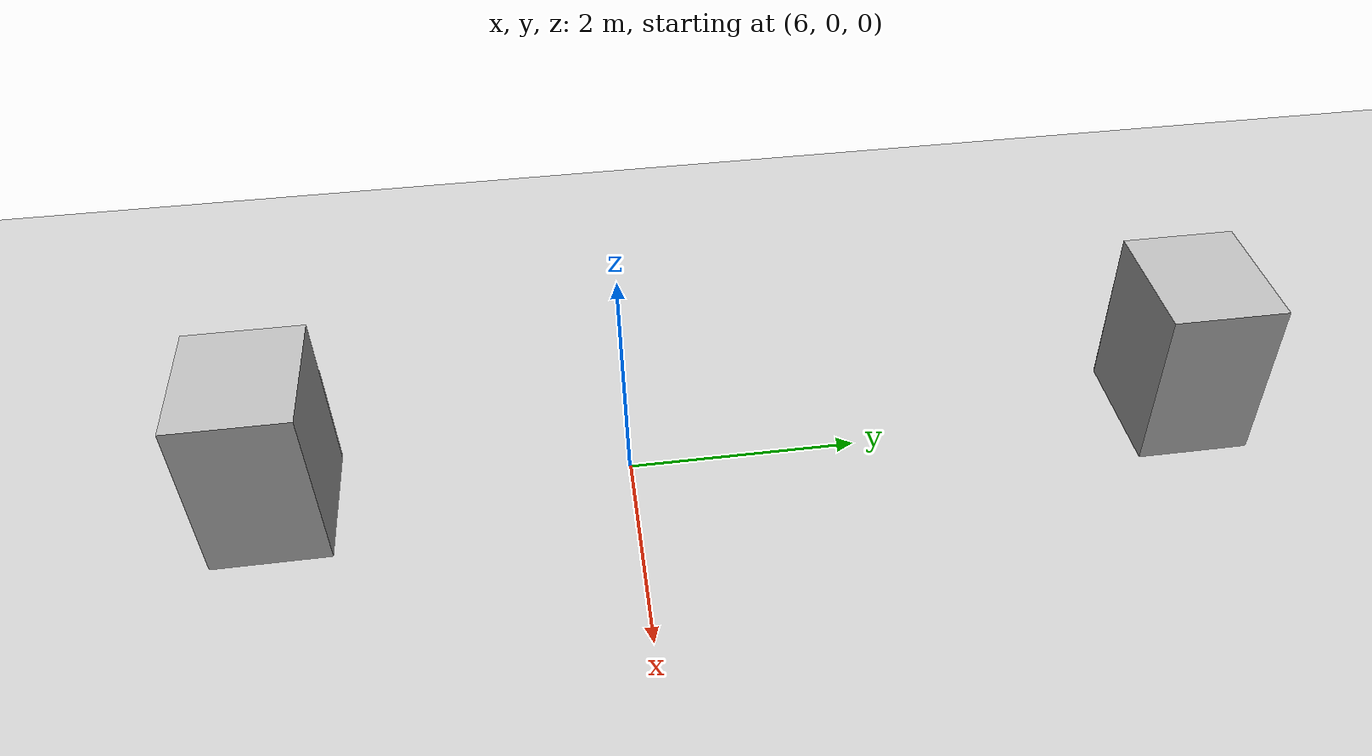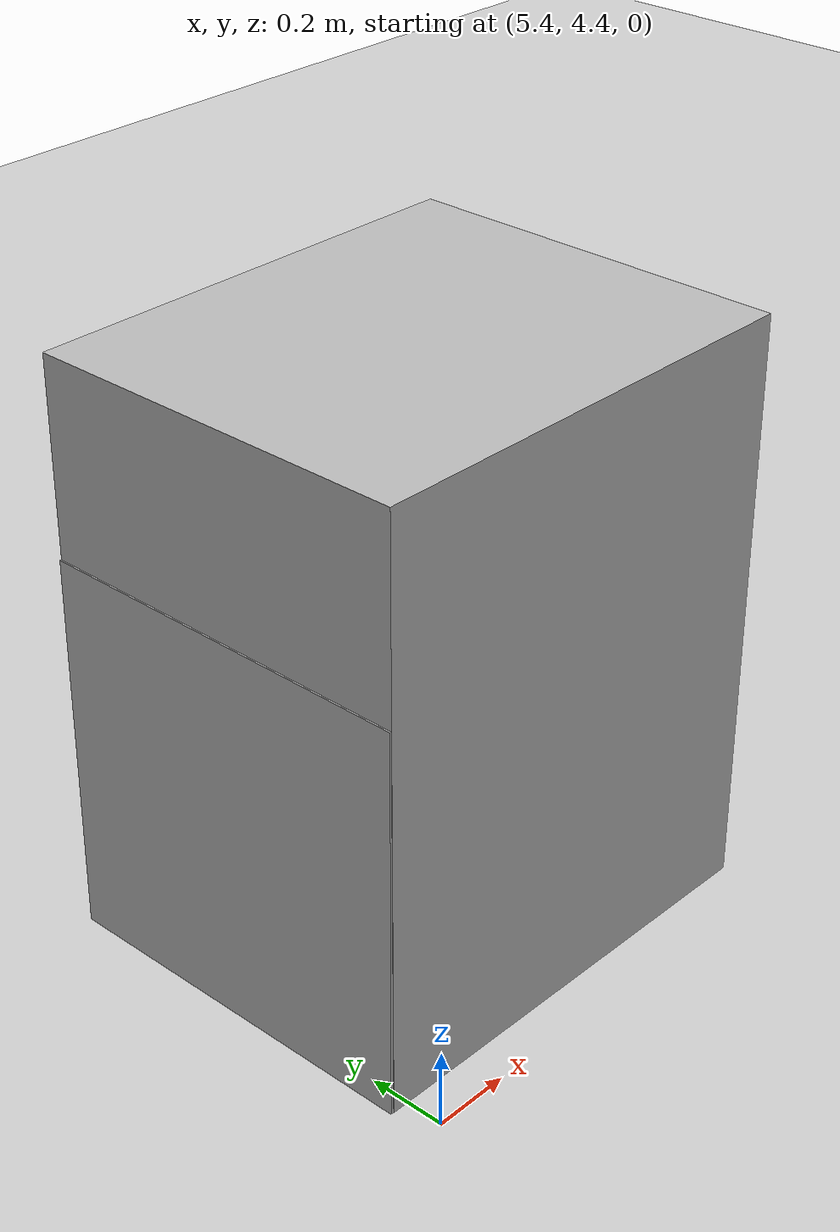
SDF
<sdf version="1.7">
 <world name="default">
  <plugin name="ros_interface_plugin" filename="librotors_gazebo_ros_interface_plugin.so"/>
  <light name="sun" type="directional">
   <pose>0 0 10 0 -0 0</pose>
   <diffuse>0.8 0.8 0.8 1</diffuse>
   <specular>0.2 0.2 0.2 1</specular>
   <attenuation>
    <range>1000</range>
    <constant>0.9</constant>
    <linear>0.01</linear>
    <quadratic>0.001</quadratic>
   </attenuation>
   <direction>-0.5 0.1 -0.9</direction>
   <spot><inner_angle>0</inner_angle><outer_angle>0</outer_angle><falloff>0</falloff></spot>
  </light>
  <model name="ground_plane">
   <static>1</static>
   <link name="link">
    <collision name="collision">
     <geometry><plane><normal>0 0 1</normal><size>100 100</size></plane></geometry>
     <surface><friction><ode><mu>100</mu><mu2>50</mu2></ode></friction></surface>
    </collision>
    <visual name="visual">
     <cast_shadows>0</cast_shadows>
     <geometry><plane><normal>0 0 1</normal><size>100 100</size></plane></geometry>
     <material>
      <script><uri>file://media/materials/scripts/gazebo.material</uri><name>Gazebo/Grey</name></script>
     </material>
    </visual>
   </link>
  </model>
  <gravity>0 0 -9.8</gravity>
  <magnetic_field>6e-06 2.3e-05 -4.2e-05</magnetic_field>
  <atmosphere type="adiabatic"/>
  <physics type="ode">
   <max_step_size>0.001</max_step_size>
   <real_time_factor>1</real_time_factor>
   <real_time_update_rate>1000</real_time_update_rate>
  </physics>
  <scene><ambient>0.4 0.4 0.4 1</ambient><background>0.7 0.7 0.7 1</background><shadows>1</shadows></scene>
  <spherical_coordinates>
   <surface_model>EARTH_WGS84</surface_model>
   <latitude_deg>0</latitude_deg>
   <longitude_deg>0</longitude_deg>
   <elevation>0</elevation>
   <heading_deg>0</heading_deg>
  </spherical_coordinates>
  <model name="Big box">
   <pose>6.0978 -3.03605 0.749499 -0 -0.000832 1e-06</pose>
   <static>0</static>
   <link name="link">
    <inertial>
     <mass>40</mass>
     <inertia><ixx>1</ixx><ixy>0</ixy><ixz>0</ixz><iyy>1</iyy><iyz>0</iyz><izz>1</izz></inertia>
    </inertial>
    <collision name="collision">
     <geometry><box><size>1.2 0.8 1.5</size></box></geometry>
     <surface><contact><ode><max_vel>0.1</max_vel><min_depth>0.001</min_depth></ode></contact></surface>
    </collision>
    <visual name="visual"><geometry><mesh><uri>model://big_box/meshes/big_box.dae</uri></mesh></geometry></visual>
   </link>
  </model>
  <model name="Apriltag36_11_00000">
   <link name="main">
    <visual name="main_Visual">
     <geometry><box><size>1 1 0.01</size></box></geometry>
     <material>
      <script>
       <uri>model://Apriltag36_11_00000/materials/scripts</uri>
       <uri>model://Apriltag36_11_00000/materials/textures</uri>
       <name>Apriltag36_11_00000</name>
      </script>
     </material>
    </visual>
   </link>
   <static>1</static>
   <pose>5.49942 -3.03177 0.507339 3.14159 -1.56767 3.14159</pose>
  </model>
  <model name="Big box_0">
   <pose>5.95603 4.99941 0.749497 0 -0.000829 -1e-06</pose>
   <static>0</static>
   <link name="link">
    <inertial>
     <mass>40</mass>
     <inertia><ixx>1</ixx><ixy>0</ixy><ixz>0</ixz><iyy>1</iyy><iyz>0</iyz><izz>1</izz></inertia>
    </inertial>
    <collision name="collision">
     <geometry><box><size>1.2 0.8 1.5</size></box></geometry>
     <surface><contact><ode><max_vel>0.1</max_vel><min_depth>0.001</min_depth></ode></contact></surface>
    </collision>
    <visual name="visual"><geometry><mesh><uri>model://big_box/meshes/big_box.dae</uri></mesh></geometry></visual>
   </link>
  </model>
  <model name="Apriltag36_11_00001">
   <link name="main">
    <visual name="main_Visual">
     <geometry><box><size>1 1 0.01</size></box></geometry>
     <material>
      <script>
       <uri>model://Apriltag36_11_00001/materials/scripts</uri>
       <uri>model://Apriltag36_11_00001/materials/textures</uri>
       <name>Apriltag36_11_00001</name>
      </script>
     </material>
    </visual>
   </link>
   <static>1</static>
   <pose>5.35529 5.00031 0.499469 0 -1.56777 0</pose>
  </model>
 </world>
</sdf>
